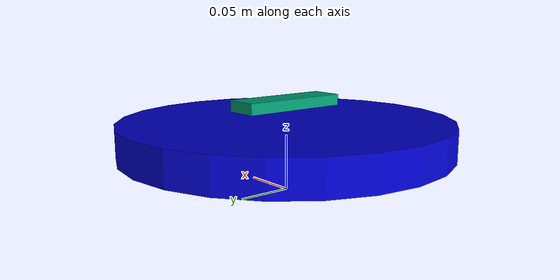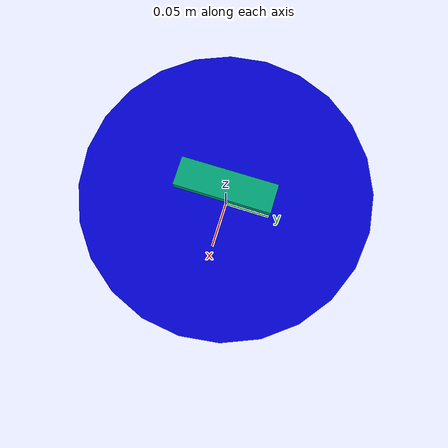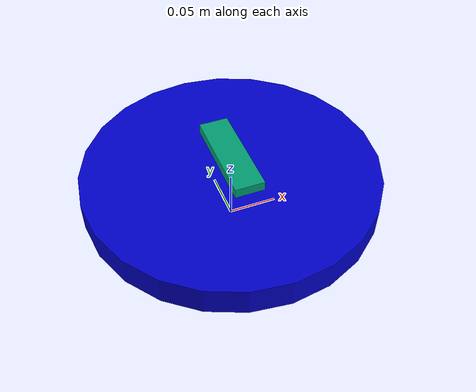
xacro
<?xml version="1.0"?>
<robot name="diffbot" xmlns:xacro="http://www.ros.org/wiki/xacro">

  <xacro:property name="laser_height" value=".03" />

  <material name="blue">
    <color rgba="0 0 0.8 1.0"/>
  </material>

    <!-- Base footprint -->
    <link name="base_footprint">
        <visual>
            <geometry>
                <sphere radius="0.01"/>
            </geometry>
        </visual>
    </link>

    <link name="base_link">
        <visual>
            <geometry>
                <cylinder radius="0.15" length="0.03"/>
            </geometry>
            <material name="blue"/>
        </visual>
    </link>

    <joint name="base_footprint_to_base_link" type="fixed">
        <parent link="base_footprint"/>
        <child link="base_link"/>
        <origin xyz="0 0 0.05" rpy="0 0 0"/>
    </joint>

    <link name="lidar">
        <origin xyz="0 0 0.045" rpy="0.0 0 0"/>
        <visual>
            <geometry>
                <box size="0.1 0.03 0.01" />
            </geometry>
        </visual>
    </link>

    <joint name="lidar_joint" type="fixed">
        <parent link="base_link"/>
        <child link="lidar"/>
        <origin xyz="0 0 ${laser_height}" rpy="0.0 0 ${pi/2}"/>
    </joint>

</robot>
